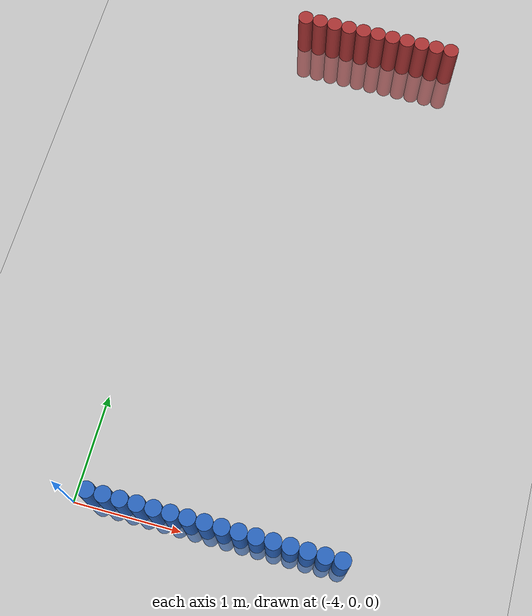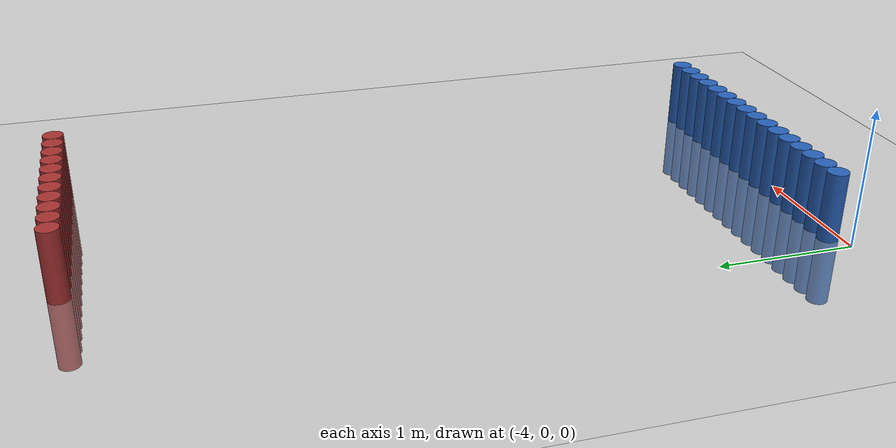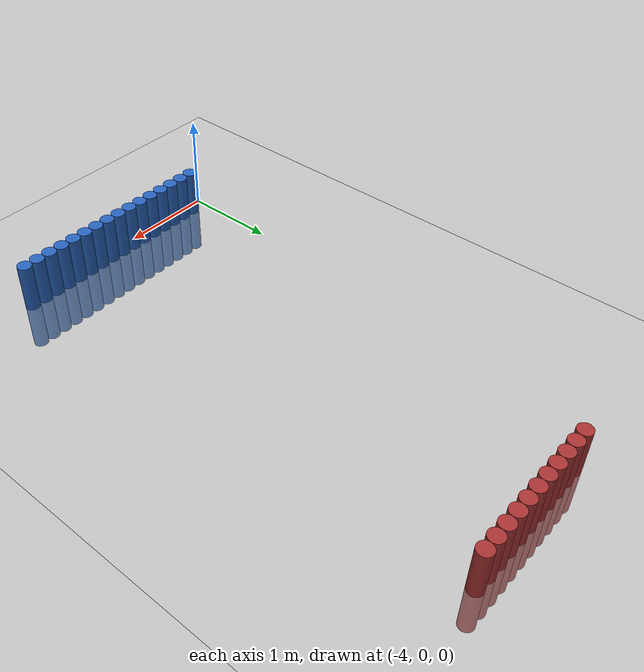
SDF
<sdf version="1.6">
 <world name="default">
  <model name="ground_plane">
   <static>1</static>
   <link name="link">
    <collision name="collision">
     <geometry><plane><normal>0 0 1</normal><size>100 100</size></plane></geometry>
     <surface><friction><ode><mu>100</mu><mu2>50</mu2></ode></friction></surface>
    </collision>
    <visual name="visual">
     <cast_shadows>0</cast_shadows>
     <geometry><plane><normal>0 0 1</normal><size>100 100</size></plane></geometry>
     <material>
      <script><uri>file://media/materials/scripts/gazebo.material</uri><name>Gazebo/Grey</name></script>
     </material>
    </visual>
   </link>
  </model>
  <model name="unit_cylinder_10">
   <static>1</static>
   <pose>-1.575000 0.075000 0.000000 0.000000 0.000000 0.000000</pose>
   <link name="link">
    <inertial>
     <mass>1</mass>
     <inertia><ixx>0.145833</ixx><ixy>0</ixy><ixz>0</ixz><iyy>0.145833</iyy><iyz>0</iyz><izz>0.125</izz></inertia>
    </inertial>
    <collision name="collision">
     <geometry><cylinder><radius>0.075000</radius><length>1</length></cylinder></geometry>
    </collision>
    <visual name="visual">
     <geometry><cylinder><radius>0.075000</radius><length>1</length></cylinder></geometry>
     <material>
      <ambient>0.152000 0.379000 0.720000 1</ambient>
      <diffuse>0.152000 0.379000 0.720000 1</diffuse>
     </material>
     <material>
      <script><name>Gazebo/Grey</name><uri>file://media/materials/scripts/gazebo.material</uri></script>
     </material>
    </visual>
   </link>
  </model>
  <model name="unit_cylinder_11">
   <static>1</static>
   <pose>-1.725000 0.075000 0.000000 0.000000 0.000000 0.000000</pose>
   <link name="link">
    <inertial>
     <mass>1</mass>
     <inertia><ixx>0.145833</ixx><ixy>0</ixy><ixz>0</ixz><iyy>0.145833</iyy><iyz>0</iyz><izz>0.125</izz></inertia>
    </inertial>
    <collision name="collision">
     <geometry><cylinder><radius>0.075000</radius><length>1</length></cylinder></geometry>
    </collision>
    <visual name="visual">
     <geometry><cylinder><radius>0.075000</radius><length>1</length></cylinder></geometry>
     <material>
      <ambient>0.152000 0.379000 0.720000 1</ambient>
      <diffuse>0.152000 0.379000 0.720000 1</diffuse>
     </material>
     <material>
      <script><name>Gazebo/Grey</name><uri>file://media/materials/scripts/gazebo.material</uri></script>
     </material>
    </visual>
   </link>
  </model>
  <model name="unit_cylinder_12">
   <static>1</static>
   <pose>-1.875000 0.075000 0.000000 0.000000 0.000000 0.000000</pose>
   <link name="link">
    <inertial>
     <mass>1</mass>
     <inertia><ixx>0.145833</ixx><ixy>0</ixy><ixz>0</ixz><iyy>0.145833</iyy><iyz>0</iyz><izz>0.125</izz></inertia>
    </inertial>
    <collision name="collision">
     <geometry><cylinder><radius>0.075000</radius><length>1</length></cylinder></geometry>
    </collision>
    <visual name="visual">
     <geometry><cylinder><radius>0.075000</radius><length>1</length></cylinder></geometry>
     <material>
      <ambient>0.152000 0.379000 0.720000 1</ambient>
      <diffuse>0.152000 0.379000 0.720000 1</diffuse>
     </material>
     <material>
      <script><name>Gazebo/Grey</name><uri>file://media/materials/scripts/gazebo.material</uri></script>
     </material>
    </visual>
   </link>
  </model>
  <model name="unit_cylinder_13">
   <static>1</static>
   <pose>-2.025000 0.075000 0.000000 0.000000 0.000000 0.000000</pose>
   <link name="link">
    <inertial>
     <mass>1</mass>
     <inertia><ixx>0.145833</ixx><ixy>0</ixy><ixz>0</ixz><iyy>0.145833</iyy><iyz>0</iyz><izz>0.125</izz></inertia>
    </inertial>
    <collision name="collision">
     <geometry><cylinder><radius>0.075000</radius><length>1</length></cylinder></geometry>
    </collision>
    <visual name="visual">
     <geometry><cylinder><radius>0.075000</radius><length>1</length></cylinder></geometry>
     <material>
      <ambient>0.152000 0.379000 0.720000 1</ambient>
      <diffuse>0.152000 0.379000 0.720000 1</diffuse>
     </material>
     <material>
      <script><name>Gazebo/Grey</name><uri>file://media/materials/scripts/gazebo.material</uri></script>
     </material>
    </visual>
   </link>
  </model>
  <model name="unit_cylinder_14">
   <static>1</static>
   <pose>-2.175000 0.075000 0.000000 0.000000 0.000000 0.000000</pose>
   <link name="link">
    <inertial>
     <mass>1</mass>
     <inertia><ixx>0.145833</ixx><ixy>0</ixy><ixz>0</ixz><iyy>0.145833</iyy><iyz>0</iyz><izz>0.125</izz></inertia>
    </inertial>
    <collision name="collision">
     <geometry><cylinder><radius>0.075000</radius><length>1</length></cylinder></geometry>
    </collision>
    <visual name="visual">
     <geometry><cylinder><radius>0.075000</radius><length>1</length></cylinder></geometry>
     <material>
      <ambient>0.152000 0.379000 0.720000 1</ambient>
      <diffuse>0.152000 0.379000 0.720000 1</diffuse>
     </material>
     <material>
      <script><name>Gazebo/Grey</name><uri>file://media/materials/scripts/gazebo.material</uri></script>
     </material>
    </visual>
   </link>
  </model>
  <model name="unit_cylinder_15">
   <static>1</static>
   <pose>-2.325000 0.075000 0.000000 0.000000 0.000000 0.000000</pose>
   <link name="link">
    <inertial>
     <mass>1</mass>
     <inertia><ixx>0.145833</ixx><ixy>0</ixy><ixz>0</ixz><iyy>0.145833</iyy><iyz>0</iyz><izz>0.125</izz></inertia>
    </inertial>
    <collision name="collision">
     <geometry><cylinder><radius>0.075000</radius><length>1</length></cylinder></geometry>
    </collision>
    <visual name="visual">
     <geometry><cylinder><radius>0.075000</radius><length>1</length></cylinder></geometry>
     <material>
      <ambient>0.152000 0.379000 0.720000 1</ambient>
      <diffuse>0.152000 0.379000 0.720000 1</diffuse>
     </material>
     <material>
      <script><name>Gazebo/Grey</name><uri>file://media/materials/scripts/gazebo.material</uri></script>
     </material>
    </visual>
   </link>
  </model>
  <model name="unit_cylinder_16">
   <static>1</static>
   <pose>-2.475000 0.075000 0.000000 0.000000 0.000000 0.000000</pose>
   <link name="link">
    <inertial>
     <mass>1</mass>
     <inertia><ixx>0.145833</ixx><ixy>0</ixy><ixz>0</ixz><iyy>0.145833</iyy><iyz>0</iyz><izz>0.125</izz></inertia>
    </inertial>
    <collision name="collision">
     <geometry><cylinder><radius>0.075000</radius><length>1</length></cylinder></geometry>
    </collision>
    <visual name="visual">
     <geometry><cylinder><radius>0.075000</radius><length>1</length></cylinder></geometry>
     <material>
      <ambient>0.152000 0.379000 0.720000 1</ambient>
      <diffuse>0.152000 0.379000 0.720000 1</diffuse>
     </material>
     <material>
      <script><name>Gazebo/Grey</name><uri>file://media/materials/scripts/gazebo.material</uri></script>
     </material>
    </visual>
   </link>
  </model>
  <model name="unit_cylinder_17">
   <static>1</static>
   <pose>-2.625000 0.075000 0.000000 0.000000 0.000000 0.000000</pose>
   <link name="link">
    <inertial>
     <mass>1</mass>
     <inertia><ixx>0.145833</ixx><ixy>0</ixy><ixz>0</ixz><iyy>0.145833</iyy><iyz>0</iyz><izz>0.125</izz></inertia>
    </inertial>
    <collision name="collision">
     <geometry><cylinder><radius>0.075000</radius><length>1</length></cylinder></geometry>
    </collision>
    <visual name="visual">
     <geometry><cylinder><radius>0.075000</radius><length>1</length></cylinder></geometry>
     <material>
      <ambient>0.152000 0.379000 0.720000 1</ambient>
      <diffuse>0.152000 0.379000 0.720000 1</diffuse>
     </material>
     <material>
      <script><name>Gazebo/Grey</name><uri>file://media/materials/scripts/gazebo.material</uri></script>
     </material>
    </visual>
   </link>
  </model>
  <model name="unit_cylinder_18">
   <static>1</static>
   <pose>-2.775000 0.075000 0.000000 0.000000 0.000000 0.000000</pose>
   <link name="link">
    <inertial>
     <mass>1</mass>
     <inertia><ixx>0.145833</ixx><ixy>0</ixy><ixz>0</ixz><iyy>0.145833</iyy><iyz>0</iyz><izz>0.125</izz></inertia>
    </inertial>
    <collision name="collision">
     <geometry><cylinder><radius>0.075000</radius><length>1</length></cylinder></geometry>
    </collision>
    <visual name="visual">
     <geometry><cylinder><radius>0.075000</radius><length>1</length></cylinder></geometry>
     <material>
      <ambient>0.152000 0.379000 0.720000 1</ambient>
      <diffuse>0.152000 0.379000 0.720000 1</diffuse>
     </material>
     <material>
      <script><name>Gazebo/Grey</name><uri>file://media/materials/scripts/gazebo.material</uri></script>
     </material>
    </visual>
   </link>
  </model>
  <model name="unit_cylinder_19">
   <static>1</static>
   <pose>-2.925000 0.075000 0.000000 0.000000 0.000000 0.000000</pose>
   <link name="link">
    <inertial>
     <mass>1</mass>
     <inertia><ixx>0.145833</ixx><ixy>0</ixy><ixz>0</ixz><iyy>0.145833</iyy><iyz>0</iyz><izz>0.125</izz></inertia>
    </inertial>
    <collision name="collision">
     <geometry><cylinder><radius>0.075000</radius><length>1</length></cylinder></geometry>
    </collision>
    <visual name="visual">
     <geometry><cylinder><radius>0.075000</radius><length>1</length></cylinder></geometry>
     <material>
      <ambient>0.152000 0.379000 0.720000 1</ambient>
      <diffuse>0.152000 0.379000 0.720000 1</diffuse>
     </material>
     <material>
      <script><name>Gazebo/Grey</name><uri>file://media/materials/scripts/gazebo.material</uri></script>
     </material>
    </visual>
   </link>
  </model>
  <model name="unit_cylinder_20">
   <static>1</static>
   <pose>-3.075000 0.075000 0.000000 0.000000 0.000000 0.000000</pose>
   <link name="link">
    <inertial>
     <mass>1</mass>
     <inertia><ixx>0.145833</ixx><ixy>0</ixy><ixz>0</ixz><iyy>0.145833</iyy><iyz>0</iyz><izz>0.125</izz></inertia>
    </inertial>
    <collision name="collision">
     <geometry><cylinder><radius>0.075000</radius><length>1</length></cylinder></geometry>
    </collision>
    <visual name="visual">
     <geometry><cylinder><radius>0.075000</radius><length>1</length></cylinder></geometry>
     <material>
      <ambient>0.152000 0.379000 0.720000 1</ambient>
      <diffuse>0.152000 0.379000 0.720000 1</diffuse>
     </material>
     <material>
      <script><name>Gazebo/Grey</name><uri>file://media/materials/scripts/gazebo.material</uri></script>
     </material>
    </visual>
   </link>
  </model>
  <model name="unit_cylinder_21">
   <static>1</static>
   <pose>-3.225000 0.075000 0.000000 0.000000 0.000000 0.000000</pose>
   <link name="link">
    <inertial>
     <mass>1</mass>
     <inertia><ixx>0.145833</ixx><ixy>0</ixy><ixz>0</ixz><iyy>0.145833</iyy><iyz>0</iyz><izz>0.125</izz></inertia>
    </inertial>
    <collision name="collision">
     <geometry><cylinder><radius>0.075000</radius><length>1</length></cylinder></geometry>
    </collision>
    <visual name="visual">
     <geometry><cylinder><radius>0.075000</radius><length>1</length></cylinder></geometry>
     <material>
      <ambient>0.152000 0.379000 0.720000 1</ambient>
      <diffuse>0.152000 0.379000 0.720000 1</diffuse>
     </material>
     <material>
      <script><name>Gazebo/Grey</name><uri>file://media/materials/scripts/gazebo.material</uri></script>
     </material>
    </visual>
   </link>
  </model>
  <model name="unit_cylinder_22">
   <static>1</static>
   <pose>-3.375000 0.075000 0.000000 0.000000 0.000000 0.000000</pose>
   <link name="link">
    <inertial>
     <mass>1</mass>
     <inertia><ixx>0.145833</ixx><ixy>0</ixy><ixz>0</ixz><iyy>0.145833</iyy><iyz>0</iyz><izz>0.125</izz></inertia>
    </inertial>
    <collision name="collision">
     <geometry><cylinder><radius>0.075000</radius><length>1</length></cylinder></geometry>
    </collision>
    <visual name="visual">
     <geometry><cylinder><radius>0.075000</radius><length>1</length></cylinder></geometry>
     <material>
      <ambient>0.152000 0.379000 0.720000 1</ambient>
      <diffuse>0.152000 0.379000 0.720000 1</diffuse>
     </material>
     <material>
      <script><name>Gazebo/Grey</name><uri>file://media/materials/scripts/gazebo.material</uri></script>
     </material>
    </visual>
   </link>
  </model>
  <model name="unit_cylinder_23">
   <static>1</static>
   <pose>-3.525000 0.075000 0.000000 0.000000 0.000000 0.000000</pose>
   <link name="link">
    <inertial>
     <mass>1</mass>
     <inertia><ixx>0.145833</ixx><ixy>0</ixy><ixz>0</ixz><iyy>0.145833</iyy><iyz>0</iyz><izz>0.125</izz></inertia>
    </inertial>
    <collision name="collision">
     <geometry><cylinder><radius>0.075000</radius><length>1</length></cylinder></geometry>
    </collision>
    <visual name="visual">
     <geometry><cylinder><radius>0.075000</radius><length>1</length></cylinder></geometry>
     <material>
      <ambient>0.152000 0.379000 0.720000 1</ambient>
      <diffuse>0.152000 0.379000 0.720000 1</diffuse>
     </material>
     <material>
      <script><name>Gazebo/Grey</name><uri>file://media/materials/scripts/gazebo.material</uri></script>
     </material>
    </visual>
   </link>
  </model>
  <model name="unit_cylinder_24">
   <static>1</static>
   <pose>-3.675000 0.075000 0.000000 0.000000 0.000000 0.000000</pose>
   <link name="link">
    <inertial>
     <mass>1</mass>
     <inertia><ixx>0.145833</ixx><ixy>0</ixy><ixz>0</ixz><iyy>0.145833</iyy><iyz>0</iyz><izz>0.125</izz></inertia>
    </inertial>
    <collision name="collision">
     <geometry><cylinder><radius>0.075000</radius><length>1</length></cylinder></geometry>
    </collision>
    <visual name="visual">
     <geometry><cylinder><radius>0.075000</radius><length>1</length></cylinder></geometry>
     <material>
      <ambient>0.152000 0.379000 0.720000 1</ambient>
      <diffuse>0.152000 0.379000 0.720000 1</diffuse>
     </material>
     <material>
      <script><name>Gazebo/Grey</name><uri>file://media/materials/scripts/gazebo.material</uri></script>
     </material>
    </visual>
   </link>
  </model>
  <model name="unit_cylinder_25">
   <static>1</static>
   <pose>-3.825000 0.075000 0.000000 0.000000 0.000000 0.000000</pose>
   <link name="link">
    <inertial>
     <mass>1</mass>
     <inertia><ixx>0.145833</ixx><ixy>0</ixy><ixz>0</ixz><iyy>0.145833</iyy><iyz>0</iyz><izz>0.125</izz></inertia>
    </inertial>
    <collision name="collision">
     <geometry><cylinder><radius>0.075000</radius><length>1</length></cylinder></geometry>
    </collision>
    <visual name="visual">
     <geometry><cylinder><radius>0.075000</radius><length>1</length></cylinder></geometry>
     <material>
      <ambient>0.152000 0.379000 0.720000 1</ambient>
      <diffuse>0.152000 0.379000 0.720000 1</diffuse>
     </material>
     <material>
      <script><name>Gazebo/Grey</name><uri>file://media/materials/scripts/gazebo.material</uri></script>
     </material>
    </visual>
   </link>
  </model>
  <model name="unit_cylinder_283">
   <static>1</static>
   <pose>-3.225000 5.175000 0.000000 0.000000 0.000000 0.000000</pose>
   <link name="link">
    <inertial>
     <mass>1</mass>
     <inertia><ixx>0.145833</ixx><ixy>0</ixy><ixz>0</ixz><iyy>0.145833</iyy><iyz>0</iyz><izz>0.125</izz></inertia>
    </inertial>
    <collision name="collision">
     <geometry><cylinder><radius>0.075000</radius><length>1</length></cylinder></geometry>
    </collision>
    <visual name="visual">
     <geometry><cylinder><radius>0.075000</radius><length>1</length></cylinder></geometry>
     <material>
      <ambient>0.648000 0.192000 0.192000 1</ambient>
      <diffuse>0.648000 0.192000 0.192000 1</diffuse>
     </material>
     <material>
      <script><name>Gazebo/Grey</name><uri>file://media/materials/scripts/gazebo.material</uri></script>
     </material>
    </visual>
   </link>
  </model>
  <model name="unit_cylinder_289">
   <static>1</static>
   <pose>-3.075000 5.175000 0.000000 0.000000 0.000000 0.000000</pose>
   <link name="link">
    <inertial>
     <mass>1</mass>
     <inertia><ixx>0.145833</ixx><ixy>0</ixy><ixz>0</ixz><iyy>0.145833</iyy><iyz>0</iyz><izz>0.125</izz></inertia>
    </inertial>
    <collision name="collision">
     <geometry><cylinder><radius>0.075000</radius><length>1</length></cylinder></geometry>
    </collision>
    <visual name="visual">
     <geometry><cylinder><radius>0.075000</radius><length>1</length></cylinder></geometry>
     <material>
      <ambient>0.648000 0.192000 0.192000 1</ambient>
      <diffuse>0.648000 0.192000 0.192000 1</diffuse>
     </material>
     <material>
      <script><name>Gazebo/Grey</name><uri>file://media/materials/scripts/gazebo.material</uri></script>
     </material>
    </visual>
   </link>
  </model>
  <model name="unit_cylinder_302">
   <static>1</static>
   <pose>-2.925000 5.175000 0.000000 0.000000 0.000000 0.000000</pose>
   <link name="link">
    <inertial>
     <mass>1</mass>
     <inertia><ixx>0.145833</ixx><ixy>0</ixy><ixz>0</ixz><iyy>0.145833</iyy><iyz>0</iyz><izz>0.125</izz></inertia>
    </inertial>
    <collision name="collision">
     <geometry><cylinder><radius>0.075000</radius><length>1</length></cylinder></geometry>
    </collision>
    <visual name="visual">
     <geometry><cylinder><radius>0.075000</radius><length>1</length></cylinder></geometry>
     <material>
      <ambient>0.648000 0.192000 0.192000 1</ambient>
      <diffuse>0.648000 0.192000 0.192000 1</diffuse>
     </material>
     <material>
      <script><name>Gazebo/Grey</name><uri>file://media/materials/scripts/gazebo.material</uri></script>
     </material>
    </visual>
   </link>
  </model>
  <model name="unit_cylinder_317">
   <static>1</static>
   <pose>-2.775000 5.175000 0.000000 0.000000 0.000000 0.000000</pose>
   <link name="link">
    <inertial>
     <mass>1</mass>
     <inertia><ixx>0.145833</ixx><ixy>0</ixy><ixz>0</ixz><iyy>0.145833</iyy><iyz>0</iyz><izz>0.125</izz></inertia>
    </inertial>
    <collision name="collision">
     <geometry><cylinder><radius>0.075000</radius><length>1</length></cylinder></geometry>
    </collision>
    <visual name="visual">
     <geometry><cylinder><radius>0.075000</radius><length>1</length></cylinder></geometry>
     <material>
      <ambient>0.648000 0.192000 0.192000 1</ambient>
      <diffuse>0.648000 0.192000 0.192000 1</diffuse>
     </material>
     <material>
      <script><name>Gazebo/Grey</name><uri>file://media/materials/scripts/gazebo.material</uri></script>
     </material>
    </visual>
   </link>
  </model>
  <model name="unit_cylinder_319">
   <static>1</static>
   <pose>-2.625000 5.175000 0.000000 0.000000 0.000000 0.000000</pose>
   <link name="link">
    <inertial>
     <mass>1</mass>
     <inertia><ixx>0.145833</ixx><ixy>0</ixy><ixz>0</ixz><iyy>0.145833</iyy><iyz>0</iyz><izz>0.125</izz></inertia>
    </inertial>
    <collision name="collision">
     <geometry><cylinder><radius>0.075000</radius><length>1</length></cylinder></geometry>
    </collision>
    <visual name="visual">
     <geometry><cylinder><radius>0.075000</radius><length>1</length></cylinder></geometry>
     <material>
      <ambient>0.648000 0.192000 0.192000 1</ambient>
      <diffuse>0.648000 0.192000 0.192000 1</diffuse>
     </material>
     <material>
      <script><name>Gazebo/Grey</name><uri>file://media/materials/scripts/gazebo.material</uri></script>
     </material>
    </visual>
   </link>
  </model>
  <model name="unit_cylinder_321">
   <static>1</static>
   <pose>-2.475000 5.175000 0.000000 0.000000 0.000000 0.000000</pose>
   <link name="link">
    <inertial>
     <mass>1</mass>
     <inertia><ixx>0.145833</ixx><ixy>0</ixy><ixz>0</ixz><iyy>0.145833</iyy><iyz>0</iyz><izz>0.125</izz></inertia>
    </inertial>
    <collision name="collision">
     <geometry><cylinder><radius>0.075000</radius><length>1</length></cylinder></geometry>
    </collision>
    <visual name="visual">
     <geometry><cylinder><radius>0.075000</radius><length>1</length></cylinder></geometry>
     <material>
      <ambient>0.648000 0.192000 0.192000 1</ambient>
      <diffuse>0.648000 0.192000 0.192000 1</diffuse>
     </material>
     <material>
      <script><name>Gazebo/Grey</name><uri>file://media/materials/scripts/gazebo.material</uri></script>
     </material>
    </visual>
   </link>
  </model>
  <model name="unit_cylinder_323">
   <static>1</static>
   <pose>-2.325000 5.175000 0.000000 0.000000 0.000000 0.000000</pose>
   <link name="link">
    <inertial>
     <mass>1</mass>
     <inertia><ixx>0.145833</ixx><ixy>0</ixy><ixz>0</ixz><iyy>0.145833</iyy><iyz>0</iyz><izz>0.125</izz></inertia>
    </inertial>
    <collision name="collision">
     <geometry><cylinder><radius>0.075000</radius><length>1</length></cylinder></geometry>
    </collision>
    <visual name="visual">
     <geometry><cylinder><radius>0.075000</radius><length>1</length></cylinder></geometry>
     <material>
      <ambient>0.648000 0.192000 0.192000 1</ambient>
      <diffuse>0.648000 0.192000 0.192000 1</diffuse>
     </material>
     <material>
      <script><name>Gazebo/Grey</name><uri>file://media/materials/scripts/gazebo.material</uri></script>
     </material>
    </visual>
   </link>
  </model>
  <model name="unit_cylinder_325">
   <static>1</static>
   <pose>-2.175000 5.175000 0.000000 0.000000 0.000000 0.000000</pose>
   <link name="link">
    <inertial>
     <mass>1</mass>
     <inertia><ixx>0.145833</ixx><ixy>0</ixy><ixz>0</ixz><iyy>0.145833</iyy><iyz>0</iyz><izz>0.125</izz></inertia>
    </inertial>
    <collision name="collision">
     <geometry><cylinder><radius>0.075000</radius><length>1</length></cylinder></geometry>
    </collision>
    <visual name="visual">
     <geometry><cylinder><radius>0.075000</radius><length>1</length></cylinder></geometry>
     <material>
      <ambient>0.648000 0.192000 0.192000 1</ambient>
      <diffuse>0.648000 0.192000 0.192000 1</diffuse>
     </material>
     <material>
      <script><name>Gazebo/Grey</name><uri>file://media/materials/scripts/gazebo.material</uri></script>
     </material>
    </visual>
   </link>
  </model>
  <model name="unit_cylinder_327">
   <static>1</static>
   <pose>-2.025000 5.175000 0.000000 0.000000 0.000000 0.000000</pose>
   <link name="link">
    <inertial>
     <mass>1</mass>
     <inertia><ixx>0.145833</ixx><ixy>0</ixy><ixz>0</ixz><iyy>0.145833</iyy><iyz>0</iyz><izz>0.125</izz></inertia>
    </inertial>
    <collision name="collision">
     <geometry><cylinder><radius>0.075000</radius><length>1</length></cylinder></geometry>
    </collision>
    <visual name="visual">
     <geometry><cylinder><radius>0.075000</radius><length>1</length></cylinder></geometry>
     <material>
      <ambient>0.648000 0.192000 0.192000 1</ambient>
      <diffuse>0.648000 0.192000 0.192000 1</diffuse>
     </material>
     <material>
      <script><name>Gazebo/Grey</name><uri>file://media/materials/scripts/gazebo.material</uri></script>
     </material>
    </visual>
   </link>
  </model>
  <model name="unit_cylinder_329">
   <static>1</static>
   <pose>-1.875000 5.175000 0.000000 0.000000 0.000000 0.000000</pose>
   <link name="link">
    <inertial>
     <mass>1</mass>
     <inertia><ixx>0.145833</ixx><ixy>0</ixy><ixz>0</ixz><iyy>0.145833</iyy><iyz>0</iyz><izz>0.125</izz></inertia>
    </inertial>
    <collision name="collision">
     <geometry><cylinder><radius>0.075000</radius><length>1</length></cylinder></geometry>
    </collision>
    <visual name="visual">
     <geometry><cylinder><radius>0.075000</radius><length>1</length></cylinder></geometry>
     <material>
      <ambient>0.648000 0.192000 0.192000 1</ambient>
      <diffuse>0.648000 0.192000 0.192000 1</diffuse>
     </material>
     <material>
      <script><name>Gazebo/Grey</name><uri>file://media/materials/scripts/gazebo.material</uri></script>
     </material>
    </visual>
   </link>
  </model>
  <model name="unit_cylinder_331">
   <static>1</static>
   <pose>-1.725000 5.175000 0.000000 0.000000 0.000000 0.000000</pose>
   <link name="link">
    <inertial>
     <mass>1</mass>
     <inertia><ixx>0.145833</ixx><ixy>0</ixy><ixz>0</ixz><iyy>0.145833</iyy><iyz>0</iyz><izz>0.125</izz></inertia>
    </inertial>
    <collision name="collision">
     <geometry><cylinder><radius>0.075000</radius><length>1</length></cylinder></geometry>
    </collision>
    <visual name="visual">
     <geometry><cylinder><radius>0.075000</radius><length>1</length></cylinder></geometry>
     <material>
      <ambient>0.648000 0.192000 0.192000 1</ambient>
      <diffuse>0.648000 0.192000 0.192000 1</diffuse>
     </material>
     <material>
      <script><name>Gazebo/Grey</name><uri>file://media/materials/scripts/gazebo.material</uri></script>
     </material>
    </visual>
   </link>
  </model>
 </world>
</sdf>
